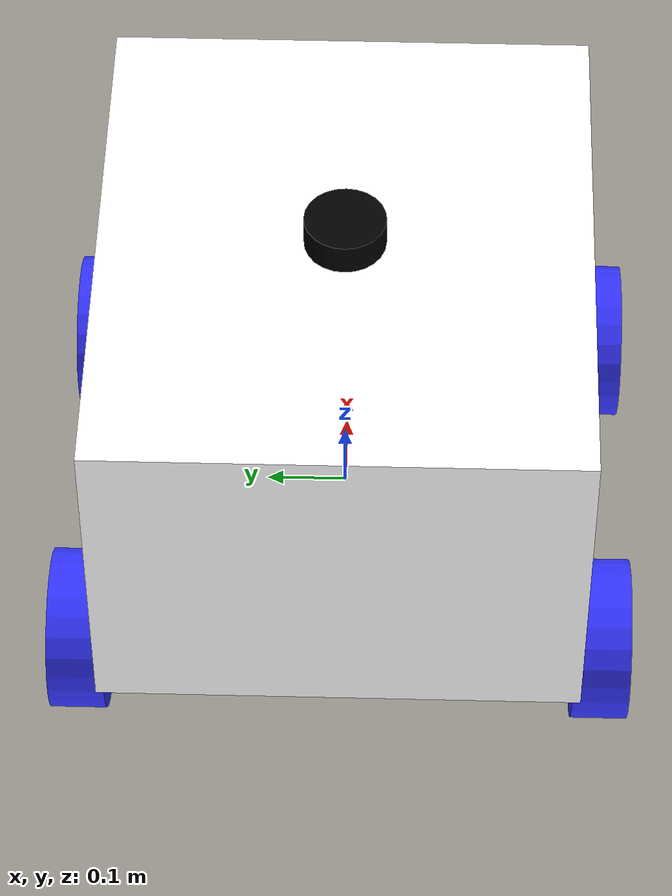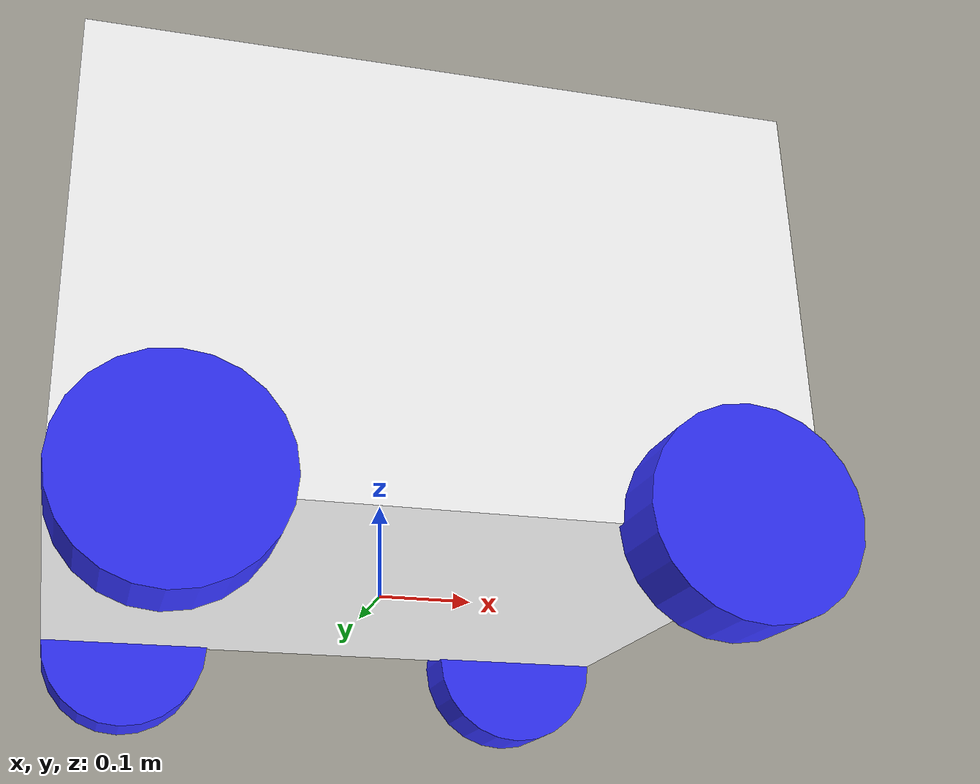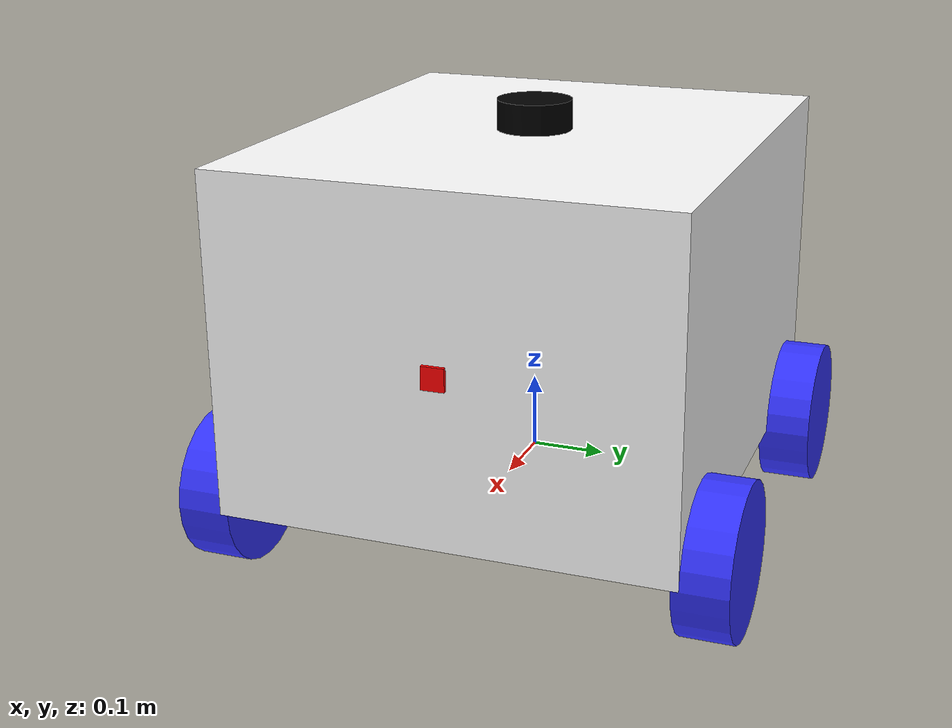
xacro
<?xml version="1.0"?>
<robot xmlns:xacro="http://www.ros.org/wiki/xacro"  name="robot">

    <xacro:arg name="use_ros2_control" default="true"/>
    <xacro:arg name="sim_mode" default="false"/>

    <xacro:include filename="robot_core.xacro" />
     <xacro:include filename="ros2_control.xacro" />

    <xacro:include filename="lidar.xacro" />
    <xacro:include filename="camera.xacro" />

</robot>

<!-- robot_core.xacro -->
<robot xmlns:xacro="http://www.ros.org/wiki/xacro" >

    <xacro:include filename="inertial_macros.xacro"/>

    <material name="white">
        <color rgba="1 1 1 1" />
    </material>

    <material name="orange">
        <color rgba="1 0.3 0.1 1"/>
    </material>

    <material name="blue">
        <color rgba="0.2 0.2 1 1"/>
    </material>

    <material name="black">
        <color rgba="0 0 0 1"/>
    </material>

    <material name="red">
        <color rgba="1 0 0 1"/>
    </material>

    <!-- BASE LINK -->

    <link name="base_link">
    </link>

    <!-- CHASSIS LINK -->

    <joint name="chassis_joint" type="fixed">
        <parent link="base_link"/>
        <child link="chassis"/>
        <origin xyz="-0.35 0 0"/>
    </joint>

    <link name="chassis">
        <visual>
            <origin xyz="0.35 0 0.225"/>
            <geometry>
                <box size="0.7 0.6 0.45"/>
            </geometry>
            <material name="white"/>
        </visual>
        <collision>
            <origin xyz="0.35 0 0.225"/>
            <geometry>
                <box size="0.7 0.6 0.45"/>
            </geometry>
        </collision>
        <xacro:inertial_box mass="30" x="0.7" y="0.6" z="0.45">
            <origin xyz="0.35 0 0.225" rpy="0 0 0"/>
        </xacro:inertial_box>
    </link>

    <gazebo reference="chassis">
        <material>Gazebo/White</material>
    </gazebo>

    <!-- LEFT BACK WHEEL LINK -->

    <joint name="left_back_wheel_joint" type="continuous">
        <parent link="base_link"/>
        <child link="left_back_wheel"/>
        <origin xyz="0.25 0.325 0" rpy="-${pi/2} 0 0" />
        <axis xyz="0 0 1"/>
        <limit effort="10000" velocity="1000"/>
        <dynamics damping="1.0" friction="1.0"/>
    </joint>

    <link name="left_back_wheel">
        <visual>
            <geometry>
                <cylinder radius="0.1" length="0.07"/>
            </geometry>
            <material name="blue"/>
        </visual>
        <collision>
            <geometry>
                <sphere radius="0.1"/>
            </geometry>
        </collision>
        <xacro:inertial_cylinder mass="1" length="0.07" radius="0.1">
            <origin xyz="0 0 0" rpy="0 0 0"/>
        </xacro:inertial_cylinder>
    </link>

    <gazebo reference="left_back_wheel">
        <material>Gazebo/Blue</material>
    </gazebo>

    <!-- RIGHT BACK WHEEL LINK -->

    <joint name="right_back_wheel_joint" type="continuous">
        <parent link="base_link"/>
        <child link="right_back_wheel"/>
        <origin xyz="0.25 -0.325 0" rpy="${pi/2} 0 0" />
        <axis xyz="0 0 -1"/>
        <limit effort="10000" velocity="1000"/>
        <dynamics damping="1.0" friction="1.0"/>
    </joint>

    <link name="right_back_wheel">
        <visual>
            <geometry>
                <cylinder radius="0.1" length="0.07"/>
            </geometry>
            <material name="blue"/>
        </visual>
        <collision>
            <geometry>
                <sphere radius="0.1"/>
            </geometry>
        </collision>
        <xacro:inertial_cylinder mass="1" length="0.07" radius="0.1">
            <origin xyz="0 0 0" rpy="0 0 0"/>
        </xacro:inertial_cylinder>
    </link>

    <gazebo reference="right_back_wheel">
        <material>Gazebo/Blue</material>
    </gazebo>

    <!-- LEFT FRONT WHEEL LINK -->

    <joint name="left_front_wheel_joint" type="continuous">
        <parent link="base_link"/>
        <child link="left_front_wheel"/>
        <origin xyz="-0.25 0.325 0" rpy="-${pi/2} 0 0" />
        <axis xyz="0 0 1"/>
        <limit effort="10000" velocity="1000"/>
        <dynamics damping="1.0" friction="1.0"/>
    </joint>

    <link name="left_front_wheel">
        <visual>
            <geometry>
                <cylinder radius="0.1" length="0.07"/>
            </geometry>
            <material name="blue"/>
        </visual>
        <collision>
            <geometry>
                <sphere radius="0.1"/>
            </geometry>
        </collision>
        <xacro:inertial_cylinder mass="1" length="0.07" radius="0.1">
            <origin xyz="0 0 0" rpy="0 0 0"/>
        </xacro:inertial_cylinder>
    </link>

    <gazebo reference="left_front_wheel">
        <material>Gazebo/Blue</material>
    </gazebo>

   <!-- RIGHT FRONT WHEEL LINK -->

    <joint name="right_front_wheel_joint" type="continuous">
        <parent link="base_link"/>
        <child link="right_front_wheel"/>
        <origin xyz="-0.25 -0.325 0" rpy="${pi/2} 0 0" />
        <axis xyz="0 0 -1"/>
        <limit effort="10000" velocity="1000"/>
        <dynamics damping="1.0" friction="1.0"/>
    </joint>

    <link name="right_front_wheel">
        <visual>
            <geometry>
                <cylinder radius="0.1" length="0.07"/>
            </geometry>
            <material name="blue"/>
        </visual>
        <collision>
            <geometry>
                <sphere radius="0.1"/>
            </geometry>
        </collision>
        <xacro:inertial_cylinder mass="1" length="0.07" radius="0.1">
            <origin xyz="0 0 0" rpy="0 0 0"/>
        </xacro:inertial_cylinder>
    </link>

    <gazebo reference="right_front_wheel">
        <material>Gazebo/Blue</material>
    </gazebo>

</robot>

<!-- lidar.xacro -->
<robot xmlns:xacro="http://www.ros.org/wiki/xacro" >

    <joint name="laser_joint" type="fixed">
        <parent link="chassis"/>
        <child link="laser"/>
        <origin xyz="0.35 0 0.47" rpy="0 0 0"/>
    </joint>

    <link name="laser">
        <visual>
            <geometry>
                <cylinder radius="0.05" length="0.04"/>
            </geometry>
            <material name="black"/>
        </visual>
        <collision>
            <geometry>
                <cylinder radius="0.05" length="0.04"/>
            </geometry>
        </collision>
        <xacro:inertial_cylinder mass="0.1" length="0.04" radius="0.05">
            <origin xyz="0 0 0" rpy="0 0 0"/>
        </xacro:inertial_cylinder>
    </link>

    <gazebo reference="laser">
        <material>Gazebo/Black</material>

        <sensor name="laser" type="ray">
            <pose> 0 0 0 0 0 0 </pose>
            <visualize>false</visualize>
            <update_rate>10</update_rate>
            <ray>
                <scan>
                    <horizontal>
                        <samples>360</samples>
                        <resolution>1</resolution>
                        <min_angle>-3.14</min_angle>
                        <max_angle>3.14</max_angle>
                    </horizontal>
                </scan>
                <range>
                    <resolution>0.01</resolution>
                    <min>0.5</min>
                    <max>12</max>
                </range>
            </ray>
            <plugin name="laser_controller" filename="libgazebo_ros_ray_sensor.so">
                <ros>
                    <argument>~/out:=scan</argument>
                </ros>
                <output_type>sensor_msgs/LaserScan</output_type>
                <frame_name>laser</frame_name>
            </plugin>
        </sensor>
    </gazebo>

</robot>

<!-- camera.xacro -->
<robot xmlns:xacro="http://www.ros.org/wiki/xacro" >

    <joint name="camera_joint" type="fixed">
        <parent link="chassis"/>
        <child link="camera_link"/>
        <origin xyz="0.7 0 0.225" rpy="0 0 0"/>
    </joint>

    <link name="camera_link">
        <visual>
            <geometry>
                <box size="0.010 0.03 0.03"/>
            </geometry>
            <material name="red"/>
        </visual>
    </link>

    <joint name="camera_optical_joint" type="fixed">
        <parent link="camera_link"/>
        <child link="camera_link_optical"/>
        <origin xyz="0 0 0" rpy="${-pi/2} 0 ${-pi/2}"/>
    </joint>

    <link name="camera_link_optical"></link>

    <gazebo reference="camera_link">
        <material>Gazebo/Red</material>

        <sensor name="camera" type="camera">
            <pose> 0 0 0 0 0 0 </pose>
            <visualize>true</visualize>
            <update_rate>10</update_rate>
            <camera>
                <horizontal_fov>1.089</horizontal_fov>
                <image>
                    <format>R8G8B8</format>
                    <width>640</width>
                    <height>480</height>
                </image>
                <clip>
                    <near>0.05</near>
                    <far>15.0</far>
                </clip>
            </camera>
            <plugin name="camera_controller" filename="libgazebo_ros_camera.so">
                <frame_name>camera_link_optical</frame_name>
            </plugin>
        </sensor>
    </gazebo>

</robot>
